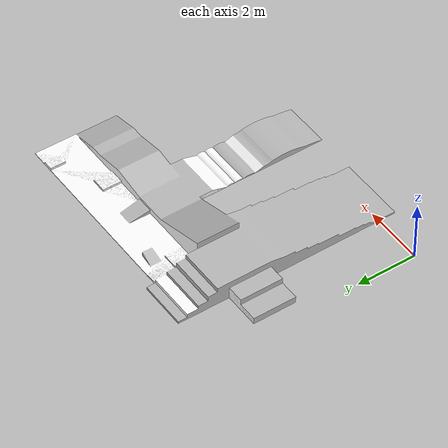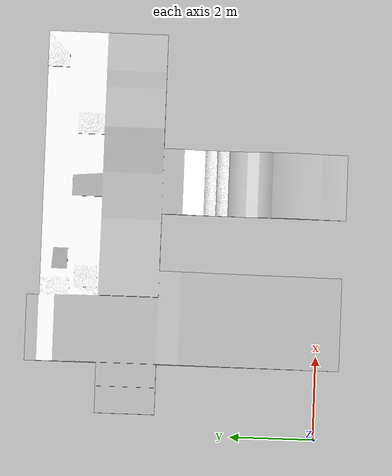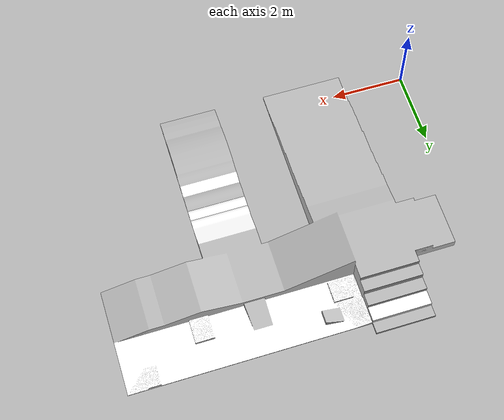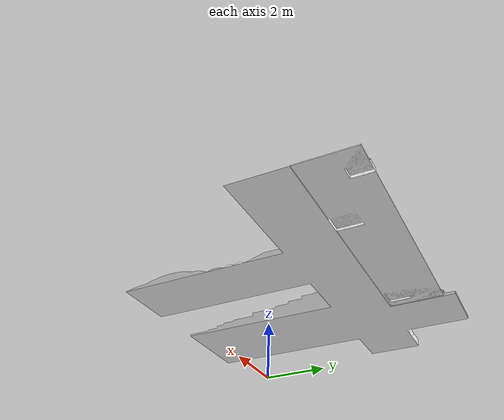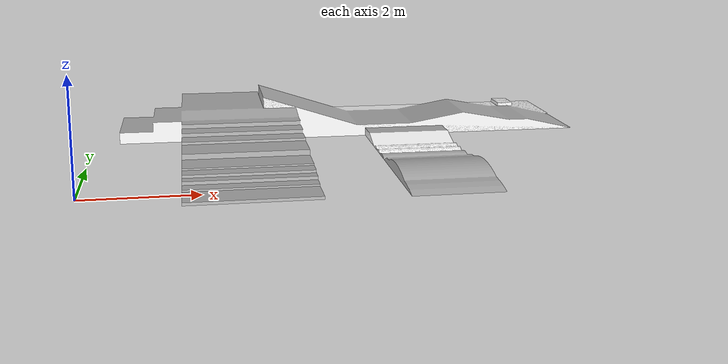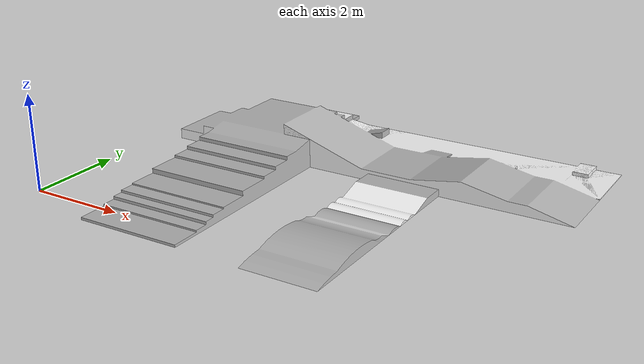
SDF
<?xml version="1.0"?>
<sdf version="1.4">
  <model name="slopes_and_stairs">
    <pose>2 0 -0.325 0 0 0</pose>
    <static>true</static>
    <link name="slopes_and_stairs_link">
      <collision name="slopes_and_stairs_collision">
        <pose>0 0 0 0 0 0</pose>
        <geometry>
          <mesh>
            <uri>model://gazebo_worlds/meshes/slopes_and_stairs.dae</uri>
          </mesh>
        </geometry>
      </collision>
      <visual name="slopes_and_stairs_visual">
        <pose>0 0 0 0 0 0</pose>
        <geometry>
          <mesh>
            <uri>model://gazebo_worlds/meshes/slopes_and_stairs.dae</uri>
          </mesh>
        </geometry>
      </visual>
    </link>
  </model>
</sdf>
